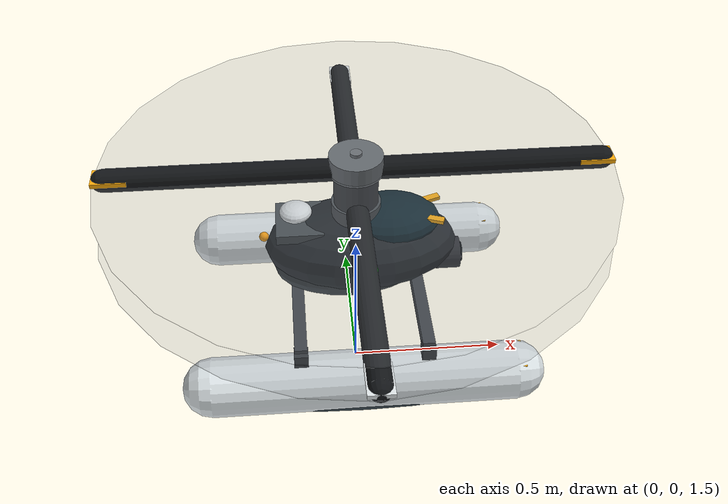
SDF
<?xml version="1.0" ?>
<sdf version="1.9">
  <world name="attitude_actuator_test">
    <physics name="1ms" type="ignored">
      <max_step_size>0.001</max_step_size>
      <real_time_factor>1.0</real_time_factor>
    </physics>
    <gravity>0 0 0</gravity>
    <plugin filename="gz-sim-physics-system" name="gz::sim::systems::Physics"/>
    <plugin filename="gz-sim-user-commands-system" name="gz::sim::systems::UserCommands"/>
    <plugin filename="gz-sim-scene-broadcaster-system" name="gz::sim::systems::SceneBroadcaster"/>
    <plugin filename="gz-sim-apply-link-wrench-system" name="gz::sim::systems::ApplyLinkWrench"/>

    <light type="directional" name="sun">
      <pose>0 0 10 0 0 0</pose>
      <diffuse>0.8 0.8 0.8 1</diffuse>
      <specular>0.2 0.2 0.2 1</specular>
      <direction>-0.5 0.1 -0.9</direction>
    </light>

    <include>
      <uri>model://coaxial_uav</uri>
      <pose>0 0 2.0 0 0 0</pose>
      <plugin filename="gz-sim-pose-publisher-system" name="gz::sim::systems::PosePublisher">
        <publish_model_pose>true</publish_model_pose>
        <publish_link_pose>false</publish_link_pose>
        <use_pose_vector_msg>false</use_pose_vector_msg>
        <static_publisher>false</static_publisher>
        <update_frequency>50</update_frequency>
      </plugin>
    </include>
  </world>
</sdf>

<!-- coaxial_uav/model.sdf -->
<sdf version="1.9">
  <model name="coaxial_uav">
    <self_collide>false</self_collide>

    <link name="base_link">
      <inertial>
        <mass>8.1</mass>
        <inertia>
          <ixx>0.18</ixx>
          <iyy>0.34</iyy>
          <izz>0.28</izz>
          <ixy>0</ixy>
          <ixz>0</ixz>
          <iyz>0</iyz>
        </inertia>
      </inertial>

      <collision name="fuselage_collision">
        <geometry>
          <box><size>0.50 0.28 0.18</size></box>
        </geometry>
      </collision>
      <!-- Visual-only airframe. Collision and inertia stay deliberately simple. -->
      <visual name="fuselage_shell">
        <pose>0.015 0 0.015 0 0 0</pose>
        <geometry><ellipsoid><radii>0.30 0.17 0.13</radii></ellipsoid></geometry>
        <material>
          <ambient>0.055 0.065 0.075 1</ambient>
          <diffuse>0.10 0.12 0.14 1</diffuse>
          <specular>0.32 0.34 0.36 1</specular>
        </material>
      </visual>
      <visual name="lower_equipment_pod">
        <pose>-0.025 0 -0.065 0 0 0</pose>
        <geometry><ellipsoid><radii>0.235 0.135 0.080</radii></ellipsoid></geometry>
        <material>
          <ambient>0.12 0.14 0.16 1</ambient>
          <diffuse>0.19 0.22 0.24 1</diffuse>
          <specular>0.26 0.28 0.30 1</specular>
        </material>
      </visual>
      <visual name="canopy">
        <pose>0.105 0 0.105 0 0 0</pose>
        <geometry><ellipsoid><radii>0.155 0.115 0.062</radii></ellipsoid></geometry>
        <material>
          <ambient>0.015 0.055 0.075 1</ambient>
          <diffuse>0.025 0.12 0.16 1</diffuse>
          <specular>0.70 0.78 0.82 1</specular>
        </material>
      </visual>
      <visual name="rear_service_deck">
        <pose>-0.175 0 0.105 0 0 0</pose>
        <geometry><box><size>0.145 0.165 0.030</size></box></geometry>
        <material>
          <ambient>0.16 0.18 0.19 1</ambient>
          <diffuse>0.25 0.28 0.30 1</diffuse>
          <specular>0.20 0.22 0.24 1</specular>
        </material>
      </visual>

      <!-- Coaxial mast, motor fairing and direction markings. -->
      <visual name="mast_fairing">
        <pose>0 0 0.170 0 0 0</pose>
        <geometry><cylinder><radius>0.068</radius><length>0.250</length></cylinder></geometry>
        <material>
          <ambient>0.11 0.12 0.13 1</ambient>
          <diffuse>0.19 0.20 0.22 1</diffuse>
          <specular>0.42 0.44 0.46 1</specular>
        </material>
      </visual>
      <visual name="rotor_mast">
        <pose>0 0 0.180 0 0 0</pose>
        <geometry><cylinder><radius>0.018</radius><length>0.360</length></cylinder></geometry>
        <material>
          <ambient>0.24 0.25 0.26 1</ambient>
          <diffuse>0.42 0.44 0.46 1</diffuse>
          <specular>0.75 0.75 0.75 1</specular>
        </material>
      </visual>
      <visual name="nose_chevron_left">
        <pose>0.205 0.040 0.132 0 0 0.35</pose>
        <geometry><box><size>0.125 0.022 0.012</size></box></geometry>
        <material><ambient>0.95 0.58 0.02 1</ambient><diffuse>1.0 0.68 0.04 1</diffuse></material>
      </visual>
      <visual name="nose_chevron_right">
        <pose>0.205 -0.040 0.132 0 0 -0.35</pose>
        <geometry><box><size>0.125 0.022 0.012</size></box></geometry>
        <material><ambient>0.95 0.58 0.02 1</ambient><diffuse>1.0 0.68 0.04 1</diffuse></material>
      </visual>

      <!-- GNSS, forward camera and navigation lights make orientation readable. -->
      <visual name="gnss_antenna">
        <pose>-0.185 0 0.148 0 0 0</pose>
        <geometry><ellipsoid><radii>0.050 0.050 0.024</radii></ellipsoid></geometry>
        <material><ambient>0.72 0.74 0.75 1</ambient><diffuse>0.88 0.90 0.91 1</diffuse><specular>0.25 0.25 0.25 1</specular></material>
      </visual>
      <visual name="camera_housing">
        <pose>0.292 0 -0.050 0 1.5708 0</pose>
        <geometry><cylinder><radius>0.050</radius><length>0.074</length></cylinder></geometry>
        <material><ambient>0.08 0.09 0.10 1</ambient><diffuse>0.14 0.15 0.17 1</diffuse><specular>0.36 0.38 0.40 1</specular></material>
      </visual>
      <visual name="camera_lens">
        <pose>0.332 0 -0.050 0 1.5708 0</pose>
        <geometry><cylinder><radius>0.031</radius><length>0.010</length></cylinder></geometry>
        <material><ambient>0.005 0.018 0.025 1</ambient><diffuse>0.01 0.035 0.05 1</diffuse><specular>0.80 0.88 0.92 1</specular></material>
      </visual>
      <visual name="port_navigation_light">
        <pose>0.035 0.171 0.045 0 0 0</pose>
        <geometry><sphere><radius>0.018</radius></sphere></geometry>
        <material><ambient>0.75 0.01 0.01 1</ambient><diffuse>1.0 0.02 0.02 1</diffuse><emissive>0.65 0.0 0.0 1</emissive></material>
      </visual>
      <visual name="starboard_navigation_light">
        <pose>0.035 -0.171 0.045 0 0 0</pose>
        <geometry><sphere><radius>0.018</radius></sphere></geometry>
        <material><ambient>0.01 0.65 0.05 1</ambient><diffuse>0.02 1.0 0.08 1</diffuse><emissive>0.0 0.55 0.02 1</emissive></material>
      </visual>
      <visual name="rear_status_light">
        <pose>-0.286 0 0.055 0 0 0</pose>
        <geometry><sphere><radius>0.015</radius></sphere></geometry>
        <material><ambient>0.95 0.45 0.0 1</ambient><diffuse>1.0 0.62 0.02 1</diffuse><emissive>0.55 0.20 0.0 1</emissive></material>
      </visual>

      <!-- Two cross beams and four short pylons connect the watertight floats. -->
      <visual name="front_float_crossbeam">
        <pose>0.190 0 -0.115 0 0 0</pose>
        <geometry><box><size>0.038 0.690 0.035</size></box></geometry>
        <material><ambient>0.12 0.13 0.14 1</ambient><diffuse>0.21 0.23 0.25 1</diffuse><specular>0.35 0.36 0.37 1</specular></material>
      </visual>
      <visual name="rear_float_crossbeam">
        <pose>-0.190 0 -0.115 0 0 0</pose>
        <geometry><box><size>0.038 0.690 0.035</size></box></geometry>
        <material><ambient>0.12 0.13 0.14 1</ambient><diffuse>0.21 0.23 0.25 1</diffuse><specular>0.35 0.36 0.37 1</specular></material>
      </visual>
      <visual name="front_left_float_pylon">
        <pose>0.190 0.340 -0.160 0 0 0</pose>
        <geometry><box><size>0.042 0.042 0.100</size></box></geometry>
        <material><diffuse>0.16 0.18 0.20 1</diffuse><specular>0.30 0.32 0.34 1</specular></material>
      </visual>
      <visual name="front_right_float_pylon">
        <pose>0.190 -0.340 -0.160 0 0 0</pose>
        <geometry><box><size>0.042 0.042 0.100</size></box></geometry>
        <material><diffuse>0.16 0.18 0.20 1</diffuse><specular>0.30 0.32 0.34 1</specular></material>
      </visual>
      <visual name="rear_left_float_pylon">
        <pose>-0.190 0.340 -0.160 0 0 0</pose>
        <geometry><box><size>0.042 0.042 0.100</size></box></geometry>
        <material><diffuse>0.16 0.18 0.20 1</diffuse><specular>0.30 0.32 0.34 1</specular></material>
      </visual>
      <visual name="rear_right_float_pylon">
        <pose>-0.190 -0.340 -0.160 0 0 0</pose>
        <geometry><box><size>0.042 0.042 0.100</size></box></geometry>
        <material><diffuse>0.16 0.18 0.20 1</diffuse><specular>0.30 0.32 0.34 1</specular></material>
      </visual>

      <!-- Simplified twin floats: collision/contact only, not a fluid model. -->
      <collision name="float_left_collision">
        <pose>0 0.34 -0.24 0 1.5708 0</pose>
        <geometry><cylinder><radius>0.09</radius><length>1.10</length></cylinder></geometry>
        <surface><friction><ode><mu>0.7</mu><mu2>0.7</mu2></ode></friction></surface>
      </collision>
      <visual name="float_left_shell">
        <pose>0 0.34 -0.24 0 1.5708 0</pose>
        <geometry><capsule><radius>0.09</radius><length>0.92</length></capsule></geometry>
        <material><ambient>0.67 0.70 0.72 1</ambient><diffuse>0.88 0.91 0.92 1</diffuse><specular>0.48 0.50 0.52 1</specular></material>
      </visual>
      <visual name="float_left_keel">
        <pose>0 0.34 -0.283 0 0 0</pose>
        <geometry><ellipsoid><radii>0.48 0.082 0.038</radii></ellipsoid></geometry>
        <material><ambient>0.12 0.15 0.17 1</ambient><diffuse>0.20 0.25 0.28 1</diffuse><specular>0.24 0.26 0.28 1</specular></material>
      </visual>
      <visual name="float_left_bow_mark">
        <pose>0.425 0.34 -0.180 0 0 0</pose>
        <geometry><box><size>0.115 0.105 0.018</size></box></geometry>
        <material><ambient>0.95 0.58 0.02 1</ambient><diffuse>1.0 0.68 0.04 1</diffuse></material>
      </visual>
      <collision name="float_right_collision">
        <pose>0 -0.34 -0.24 0 1.5708 0</pose>
        <geometry><cylinder><radius>0.09</radius><length>1.10</length></cylinder></geometry>
        <surface><friction><ode><mu>0.7</mu><mu2>0.7</mu2></ode></friction></surface>
      </collision>
      <visual name="float_right_shell">
        <pose>0 -0.34 -0.24 0 1.5708 0</pose>
        <geometry><capsule><radius>0.09</radius><length>0.92</length></capsule></geometry>
        <material><ambient>0.67 0.70 0.72 1</ambient><diffuse>0.88 0.91 0.92 1</diffuse><specular>0.48 0.50 0.52 1</specular></material>
      </visual>
      <visual name="float_right_keel">
        <pose>0 -0.34 -0.283 0 0 0</pose>
        <geometry><ellipsoid><radii>0.48 0.082 0.038</radii></ellipsoid></geometry>
        <material><ambient>0.12 0.15 0.17 1</ambient><diffuse>0.20 0.25 0.28 1</diffuse><specular>0.24 0.26 0.28 1</specular></material>
      </visual>
      <visual name="float_right_bow_mark">
        <pose>0.425 -0.34 -0.180 0 0 0</pose>
        <geometry><box><size>0.115 0.105 0.018</size></box></geometry>
        <material><ambient>0.95 0.58 0.02 1</ambient><diffuse>1.0 0.68 0.04 1</diffuse></material>
      </visual>

      <sensor name="imu" type="imu">
        <always_on>1</always_on>
        <update_rate>100</update_rate>
        <topic>imu</topic>
      </sensor>
    </link>

    <link name="upper_rotor_link">
      <pose>0 0 0.295 0 0 0</pose>
      <inertial>
        <mass>0.05</mass>
        <inertia>
          <ixx>0.005</ixx><iyy>0.005</iyy><izz>0.01</izz>
        </inertia>
      </inertial>
      <visual name="upper_rotor_blur">
        <geometry><cylinder><radius>0.775</radius><length>0.004</length></cylinder></geometry>
        <material><ambient>0.32 0.34 0.36 0.10</ambient><diffuse>0.48 0.50 0.52 0.10</diffuse></material>
        <transparency>0.90</transparency>
        <cast_shadows>false</cast_shadows>
      </visual>
      <visual name="upper_blade_forward">
        <pose>0.405 0 0.006 0 1.5708 0</pose>
        <geometry><capsule><radius>0.035</radius><length>0.670</length></capsule></geometry>
        <material><ambient>0.035 0.040 0.045 1</ambient><diffuse>0.075 0.085 0.095 1</diffuse><specular>0.28 0.30 0.32 1</specular></material>
      </visual>
      <visual name="upper_blade_aft">
        <pose>-0.405 0 0.006 0 1.5708 0</pose>
        <geometry><capsule><radius>0.035</radius><length>0.670</length></capsule></geometry>
        <material><ambient>0.035 0.040 0.045 1</ambient><diffuse>0.075 0.085 0.095 1</diffuse><specular>0.28 0.30 0.32 1</specular></material>
      </visual>
      <visual name="upper_tip_forward">
        <pose>0.720 0 0.012 0 0 0</pose>
        <geometry><box><size>0.105 0.072 0.014</size></box></geometry>
        <material><ambient>0.95 0.58 0.02 1</ambient><diffuse>1.0 0.68 0.04 1</diffuse></material>
      </visual>
      <visual name="upper_tip_aft">
        <pose>-0.720 0 0.012 0 0 0</pose>
        <geometry><box><size>0.105 0.072 0.014</size></box></geometry>
        <material><ambient>0.95 0.58 0.02 1</ambient><diffuse>1.0 0.68 0.04 1</diffuse></material>
      </visual>
      <visual name="upper_rotor_hub">
        <pose>0 0 0.025 0 0 0</pose>
        <geometry><cylinder><radius>0.082</radius><length>0.060</length></cylinder></geometry>
        <material><ambient>0.22 0.23 0.24 1</ambient><diffuse>0.40 0.42 0.44 1</diffuse><specular>0.72 0.74 0.76 1</specular></material>
      </visual>
    </link>
    <joint name="upper_rotor_joint" type="revolute">
      <parent>base_link</parent>
      <child>upper_rotor_link</child>
      <axis>
        <xyz>0 0 1</xyz>
        <limit><lower>-1e16</lower><upper>1e16</upper></limit>
        <dynamics><damping>0.0001</damping></dynamics>
      </axis>
    </joint>

    <link name="lower_rotor_link">
      <pose>0 0 0.175 0 0 0</pose>
      <inertial>
        <mass>0.05</mass>
        <inertia>
          <ixx>0.005</ixx><iyy>0.005</iyy><izz>0.01</izz>
        </inertia>
      </inertial>
      <visual name="lower_rotor_blur">
        <geometry><cylinder><radius>0.775</radius><length>0.004</length></cylinder></geometry>
        <material><ambient>0.32 0.34 0.36 0.08</ambient><diffuse>0.48 0.50 0.52 0.08</diffuse></material>
        <transparency>0.92</transparency>
        <cast_shadows>false</cast_shadows>
      </visual>
      <visual name="lower_blade_port">
        <pose>0 0.405 0.006 1.5708 0 0</pose>
        <geometry><capsule><radius>0.035</radius><length>0.670</length></capsule></geometry>
        <material><ambient>0.035 0.040 0.045 1</ambient><diffuse>0.075 0.085 0.095 1</diffuse><specular>0.28 0.30 0.32 1</specular></material>
      </visual>
      <visual name="lower_blade_starboard">
        <pose>0 -0.405 0.006 1.5708 0 0</pose>
        <geometry><capsule><radius>0.035</radius><length>0.670</length></capsule></geometry>
        <material><ambient>0.035 0.040 0.045 1</ambient><diffuse>0.075 0.085 0.095 1</diffuse><specular>0.28 0.30 0.32 1</specular></material>
      </visual>
      <visual name="lower_tip_port">
        <pose>0 0.720 0.012 0 0 0</pose>
        <geometry><box><size>0.072 0.105 0.014</size></box></geometry>
        <material><ambient>0.72 0.74 0.75 1</ambient><diffuse>0.90 0.92 0.93 1</diffuse></material>
      </visual>
      <visual name="lower_tip_starboard">
        <pose>0 -0.720 0.012 0 0 0</pose>
        <geometry><box><size>0.072 0.105 0.014</size></box></geometry>
        <material><ambient>0.72 0.74 0.75 1</ambient><diffuse>0.90 0.92 0.93 1</diffuse></material>
      </visual>
      <visual name="lower_rotor_hub">
        <pose>0 0 -0.018 0 0 0</pose>
        <geometry><cylinder><radius>0.076</radius><length>0.050</length></cylinder></geometry>
        <material><ambient>0.15 0.16 0.17 1</ambient><diffuse>0.27 0.29 0.31 1</diffuse><specular>0.58 0.60 0.62 1</specular></material>
      </visual>
    </link>
    <joint name="lower_rotor_joint" type="revolute">
      <parent>base_link</parent>
      <child>lower_rotor_link</child>
      <axis>
        <xyz>0 0 1</xyz>
        <limit><lower>-1e16</lower><upper>1e16</upper></limit>
        <dynamics><damping>0.0001</damping></dynamics>
      </axis>
    </joint>
  </model>
</sdf>
